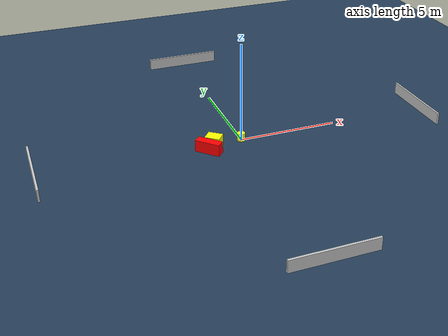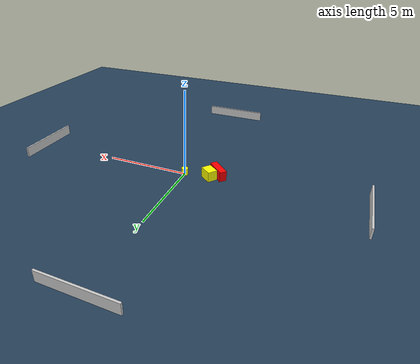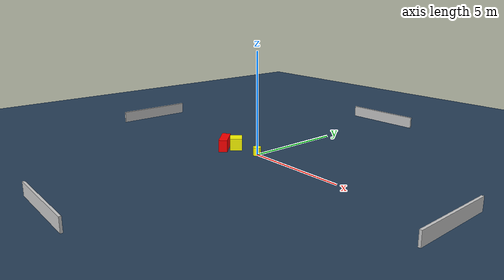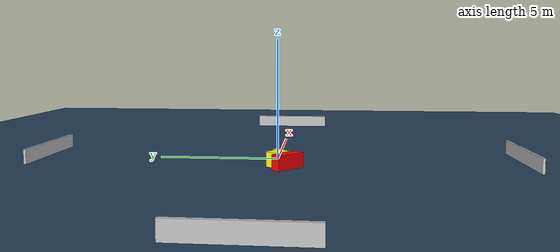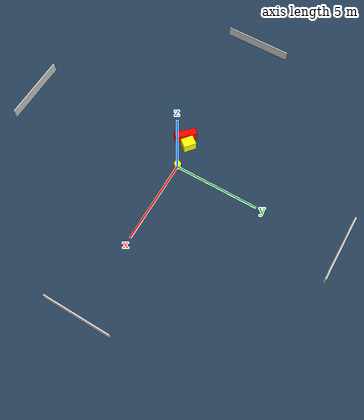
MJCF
<?xml version="1.0" ?>
<mujoco model="generated_environment">
  <option timestep="0.01" integrator="RK4" cone="elliptic"/>
  <default>
    <geom density="1"/>
  </default>
  <asset>
    <texture builtin="gradient" height="3072" name="skybox" rgb1="0.3 0.5 0.7" rgb2="0 0 0" type="skybox" width="512"/>
    <texture builtin="checker" height="300" name="groundplane" rgb1="0.2 0.3 0.4" rgb2="0.1 0.2 0.3" type="2d" width="300"/>
    <material name="groundplane" reflectance="0.2" texrepeat="5 5" texture="groundplane"/>
  </asset>
  <worldbody>
    <light dir="0 0 -1" directional="true" pos="0 0 1.5"/>
    <geom condim="3" friction="0.5 0.005 0.001" material="groundplane" name="floor" pos="0 0 0" size="0 0 0.05" type="plane"/>
    <body name="walls">
      <geom name="wall_1" condim="4" pos="-10.0 0.0 0.3" rgba="0.800000011920929 0.800000011920929 0.800000011920929 1.0" size="0.05 2.0 0.3" type="box"/>
      <geom name="wall_2" condim="4" pos="10.0 0.0 0.3" rgba="0.800000011920929 0.800000011920929 0.800000011920929 1.0" size="0.05 2.0 0.3" type="box"/>
      <geom name="wall_3" condim="4" pos="0.0 -10.0 0.3" rgba="0.800000011920929 0.800000011920929 0.800000011920929 1.0" size="2.0 0.05 0.3" type="box"/>
      <geom name="wall_4" condim="4" pos="0.0 10.0 0.3" rgba="0.800000011920929 0.800000011920929 0.800000011920929 1.0" size="2.0 0.05 0.3" type="box"/>
    </body>
    <body name="robot">
      <joint name="joint_x" type="slide" pos="0 0 0" axis="1 0 0"/>
      <joint name="joint_y" type="slide" pos="0 0 0" axis="0 1 0"/>
      <geom name="robot" type="cylinder" pos="0.0 0.0 0.2" size="0.2 0.2 0.0" mass="5.0" friction="1.0 0.005 0.0001" condim="4" rgba="1.0 1.0 0.0 1.0"/>
    </body>
    <body name="obstacle_1_movable">
      <geom name="obstacle_1_movable" condim="4" pos="-1.462110961603291 -0.13830232776189091 0.3" euler="0 0 321.6586110485048" friction="0.0 0.005 0.001" rgba="1.0 1.0 0.0 1.0" size="0.3720624745422747 0.29286928581042715 0.3" type="box" mass="0.1"/>
      <joint type="free"/>
    </body>
    <body name="obstacle_2_static">
      <geom name="obstacle_2_static" condim="4" pos="-1.85797885336245 -0.5545703334454085 0.3" euler="0 0 134.76733379992837" friction="0.0 0.005 0.001" rgba="1.0 0.0 0.0 1.0" size="0.6312496491259221 0.21168490877851198 0.3" type="box"/>
    </body>
  </worldbody>
  <actuator>
    <motor name="actuator_x" joint="joint_x" gear="1" ctrlrange="-1 1"/>
    <motor name="actuator_y" joint="joint_y" gear="1" ctrlrange="-1 1"/>
  </actuator>
</mujoco>
